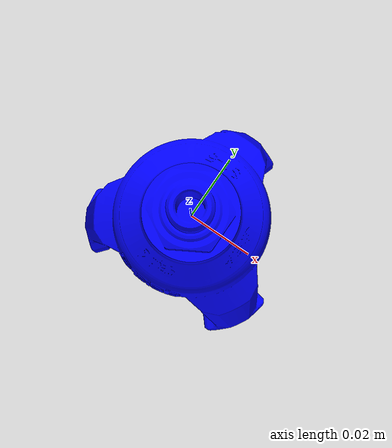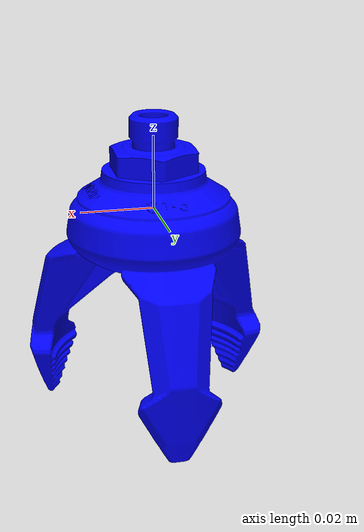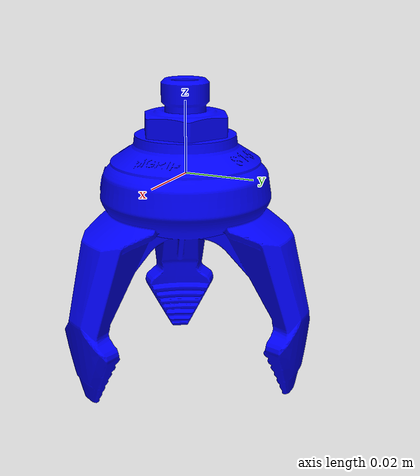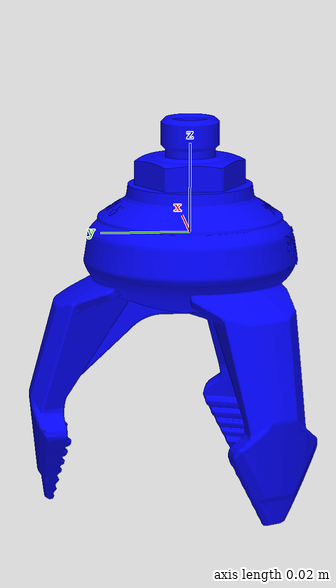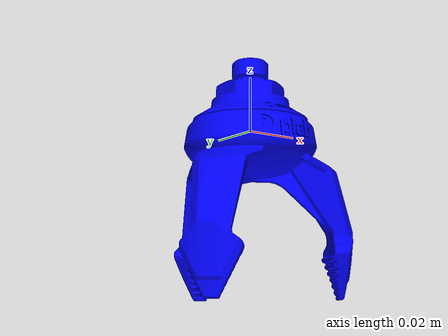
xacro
<?xml version="1.0"?>
<robot name="piSOFTGRIP" xmlns:xacro="http://ros.org/wiki/xacro">

<link name="piSOFTGRIP_link">
    <visual>
        <geometry>
            <mesh filename="package://piSOFTGRIP_description/meshes/SG_S53_F_S1-5_G14M.stl" scale="0.001 0.001 0.001"/>
        </geometry>
        <material name="blue">
            <color rgba="0 0 1 1"/>
        </material>
    </visual>
    <collision>
        <geometry>
            <cylinder radius="0.0375" length="0.13"/>
        </geometry>
    </collision>
</link>
</robot>
